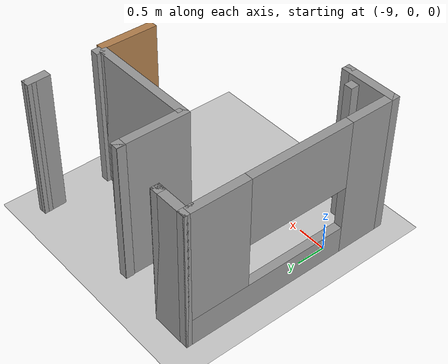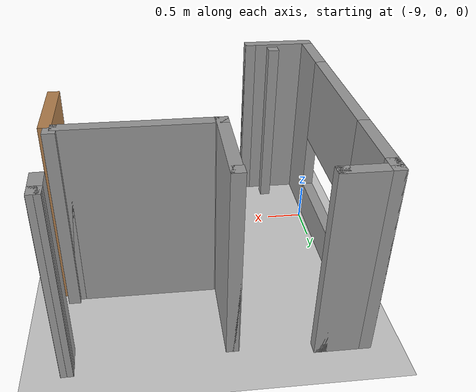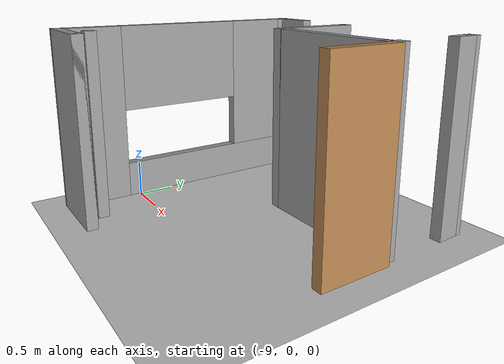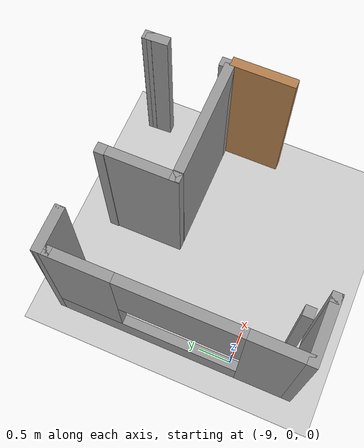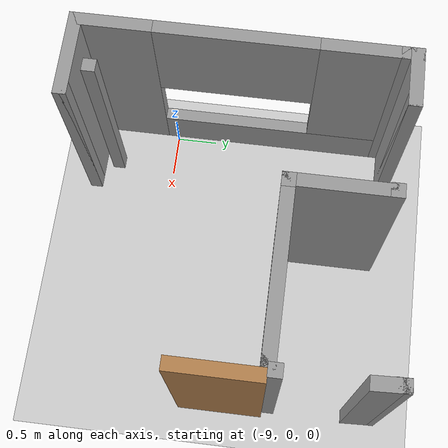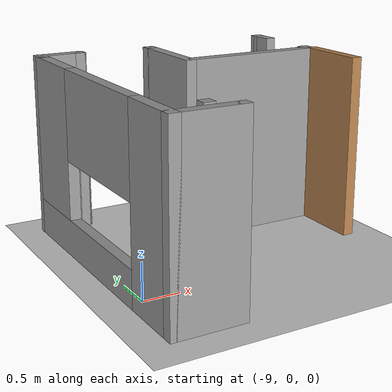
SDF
<sdf version="1.6">
 <world name="default">
  <model name="ground_plane">
   <static>1</static>
   <link name="link">
    <collision name="collision">
     <geometry><plane><normal>0 0 1</normal><size>100 100</size></plane></geometry>
     <surface><friction><ode><mu>100</mu><mu2>50</mu2></ode></friction></surface>
    </collision>
    <visual name="visual">
     <cast_shadows>0</cast_shadows>
     <geometry><plane><normal>0 0 1</normal><size>100 100</size></plane></geometry>
     <material>
      <script><uri>file://media/materials/scripts/gazebo.material</uri><name>Gazebo/Grey</name></script>
     </material>
    </visual>
   </link>
  </model>
  <model name="coloredwall">
   <pose>-5.54358 0.999428 0 0 -0 0</pose>
   <link name="Wall_2">
    <collision name="Wall_2_Collision">
     <geometry><box><size>1 0.15 2.5</size></box></geometry>
     <pose>0 0 1.25 0 -0 0</pose>
    </collision>
    <visual name="Wall_2_Visual">
     <pose>0 0 1.25 0 -0 0</pose>
     <geometry><box><size>1 0.15 2.5</size></box></geometry>
     <material>
      <script><uri>file://media/materials/scripts/gazebo.material</uri><name>Gazebo/Wood</name></script>
      <ambient>1 1 1 1</ambient>
     </material>
     <meta><layer>0</layer></meta>
    </visual>
    <pose>0 0 0 0 -0 1.5708</pose>
   </link>
   <static>1</static>
  </model>
  <model name="basicbuilding">
   <link name="Wall_25">
    <pose>-4.475 -1.87647 0 0 -0 0</pose>
    <visual name="Wall_25_Visual">
     <pose>0 0 1.25 0 -0 0</pose>
     <geometry><box><size>0.15 0.15 2.5</size></box></geometry>
     <material>
      <script><uri>file://media/materials/scripts/gazebo.material</uri><name>Gazebo/Grey</name></script>
      <ambient>1 1 1 1</ambient>
      <shader type="pixel"/>
      <diffuse>0.7 0.7 0.7 1</diffuse>
      <specular>0.01 0.01 0.01 1</specular>
      <emissive>0 0 0 1</emissive>
     </material>
     <meta><layer>0</layer></meta>
    </visual>
    <collision name="Wall_25_Collision">
     <pose>0 0 1.25 0 -0 0</pose>
     <geometry><box><size>0.15 0.15 2.5</size></box></geometry>
     <surface>
      <friction>
       <ode><mu>1</mu><mu2>1</mu2><fdir1>0 0 0</fdir1><slip1>0</slip1><slip2>0</slip2></ode>
       <torsional>
        <coefficient>1</coefficient>
        <patch_radius>0</patch_radius>
        <surface_radius>0</surface_radius>
        <use_patch_radius>1</use_patch_radius>
        <ode><slip>0</slip></ode>
       </torsional>
      </friction>
      <bounce><restitution_coefficient>0</restitution_coefficient><threshold>1e+06</threshold></bounce>
      <contact>
       <collide_without_contact>0</collide_without_contact>
       <collide_without_contact_bitmask>1</collide_without_contact_bitmask>
       <collide_bitmask>1</collide_bitmask>
       <ode>
        <soft_cfm>0</soft_cfm>
        <soft_erp>0.2</soft_erp>
        <kp>1e+13</kp>
        <kd>1</kd>
        <max_vel>0.01</max_vel>
        <min_depth>0</min_depth>
       </ode>
       <bullet>
        <split_impulse>1</split_impulse>
        <split_impulse_penetration_threshold>-0.01</split_impulse_penetration_threshold>
        <soft_cfm>0</soft_cfm>
        <soft_erp>0.2</soft_erp>
        <kp>1e+13</kp>
        <kd>1</kd>
       </bullet>
      </contact>
     </surface>
    </collision>
   </link>
   <link name="Wall_26">
    <pose>-4.9 -1.87647 0 0 -0 3.14159</pose>
    <visual name="Wall_26_Visual">
     <pose>0 0 1.25 0 -0 0</pose>
     <geometry><box><size>1 0.15 2.5</size></box></geometry>
     <material>
      <script><uri>file://media/materials/scripts/gazebo.material</uri><name>Gazebo/Grey</name></script>
      <ambient>1 1 1 1</ambient>
      <shader type="pixel"/>
      <diffuse>0.7 0.7 0.7 1</diffuse>
      <specular>0.01 0.01 0.01 1</specular>
      <emissive>0 0 0 1</emissive>
     </material>
     <meta><layer>0</layer></meta>
    </visual>
    <collision name="Wall_26_Collision">
     <pose>0 0 1.25 0 -0 0</pose>
     <geometry><box><size>1 0.15 2.5</size></box></geometry>
     <surface>
      <friction>
       <ode><mu>1</mu><mu2>1</mu2><fdir1>0 0 0</fdir1><slip1>0</slip1><slip2>0</slip2></ode>
       <torsional>
        <coefficient>1</coefficient>
        <patch_radius>0</patch_radius>
        <surface_radius>0</surface_radius>
        <use_patch_radius>1</use_patch_radius>
        <ode><slip>0</slip></ode>
       </torsional>
      </friction>
      <bounce><restitution_coefficient>0</restitution_coefficient><threshold>1e+06</threshold></bounce>
      <contact>
       <collide_without_contact>0</collide_without_contact>
       <collide_without_contact_bitmask>1</collide_without_contact_bitmask>
       <collide_bitmask>1</collide_bitmask>
       <ode>
        <soft_cfm>0</soft_cfm>
        <soft_erp>0.2</soft_erp>
        <kp>1e+13</kp>
        <kd>1</kd>
        <max_vel>0.01</max_vel>
        <min_depth>0</min_depth>
       </ode>
       <bullet>
        <split_impulse>1</split_impulse>
        <split_impulse_penetration_threshold>-0.01</split_impulse_penetration_threshold>
        <soft_cfm>0</soft_cfm>
        <soft_erp>0.2</soft_erp>
        <kp>1e+13</kp>
        <kd>1</kd>
       </bullet>
      </contact>
     </surface>
    </collision>
   </link>
   <link name="Wall_27">
    <pose>-5.325 -0.076469 0 0 -0 1.5708</pose>
    <visual name="Wall_27_Visual_0">
     <pose>-1.4175 0 1.25 0 -0 0</pose>
     <geometry><box><size>0.915 0.15 2.5</size></box></geometry>
     <material>
      <script><uri>file://media/materials/scripts/gazebo.material</uri><name>Gazebo/Grey</name></script>
      <ambient>1 1 1 1</ambient>
      <shader type="pixel"/>
      <diffuse>0.7 0.7 0.7 1</diffuse>
      <specular>0.01 0.01 0.01 1</specular>
      <emissive>0 0 0 1</emissive>
     </material>
     <meta><layer>0</layer></meta>
    </visual>
    <visual name="Wall_27_Visual_1">
     <pose>0.4575 0 0.25 0 -0 0</pose>
     <geometry><box><size>2.835 0.15 0.5</size></box></geometry>
     <material>
      <script><uri>file://media/materials/scripts/gazebo.material</uri><name>Gazebo/Grey</name></script>
      <ambient>1 1 1 1</ambient>
      <shader type="pixel"/>
      <diffuse>0.7 0.7 0.7 1</diffuse>
      <specular>0.01 0.01 0.01 1</specular>
      <emissive>0 0 0 1</emissive>
     </material>
     <meta><layer>0</layer></meta>
    </visual>
    <visual name="Wall_27_Visual_2">
     <pose>1.3675 0 1.5 0 -0 0</pose>
     <geometry><box><size>1.015 0.15 2</size></box></geometry>
     <material>
      <script><uri>file://media/materials/scripts/gazebo.material</uri><name>Gazebo/Grey</name></script>
      <ambient>1 1 1 1</ambient>
      <shader type="pixel"/>
      <diffuse>0.7 0.7 0.7 1</diffuse>
      <specular>0.01 0.01 0.01 1</specular>
      <emissive>0 0 0 1</emissive>
     </material>
     <meta><layer>0</layer></meta>
    </visual>
    <visual name="Wall_27_Visual_3">
     <pose>-0.05 0 1.9 0 -0 0</pose>
     <geometry><box><size>1.82 0.15 1.2</size></box></geometry>
     <material>
      <script><uri>file://media/materials/scripts/gazebo.material</uri><name>Gazebo/Grey</name></script>
      <ambient>1 1 1 1</ambient>
      <shader type="pixel"/>
      <diffuse>0.7 0.7 0.7 1</diffuse>
      <specular>0.01 0.01 0.01 1</specular>
      <emissive>0 0 0 1</emissive>
     </material>
     <meta><layer>0</layer></meta>
    </visual>
    <collision name="Wall_27_Collision_0">
     <pose>-1.4175 0 1.25 0 -0 0</pose>
     <geometry><box><size>0.915 0.15 2.5</size></box></geometry>
     <surface>
      <friction>
       <ode><mu>1</mu><mu2>1</mu2><fdir1>0 0 0</fdir1><slip1>0</slip1><slip2>0</slip2></ode>
       <torsional>
        <coefficient>1</coefficient>
        <patch_radius>0</patch_radius>
        <surface_radius>0</surface_radius>
        <use_patch_radius>1</use_patch_radius>
        <ode><slip>0</slip></ode>
       </torsional>
      </friction>
      <bounce><restitution_coefficient>0</restitution_coefficient><threshold>1e+06</threshold></bounce>
      <contact>
       <collide_without_contact>0</collide_without_contact>
       <collide_without_contact_bitmask>1</collide_without_contact_bitmask>
       <collide_bitmask>1</collide_bitmask>
       <ode>
        <soft_cfm>0</soft_cfm>
        <soft_erp>0.2</soft_erp>
        <kp>1e+13</kp>
        <kd>1</kd>
        <max_vel>0.01</max_vel>
        <min_depth>0</min_depth>
       </ode>
       <bullet>
        <split_impulse>1</split_impulse>
        <split_impulse_penetration_threshold>-0.01</split_impulse_penetration_threshold>
        <soft_cfm>0</soft_cfm>
        <soft_erp>0.2</soft_erp>
        <kp>1e+13</kp>
        <kd>1</kd>
       </bullet>
      </contact>
     </surface>
    </collision>
    <collision name="Wall_27_Collision_1">
     <pose>0.4575 0 0.25 0 -0 0</pose>
     <geometry><box><size>2.835 0.15 0.5</size></box></geometry>
     <surface>
      <friction>
       <ode><mu>1</mu><mu2>1</mu2><fdir1>0 0 0</fdir1><slip1>0</slip1><slip2>0</slip2></ode>
       <torsional>
        <coefficient>1</coefficient>
        <patch_radius>0</patch_radius>
        <surface_radius>0</surface_radius>
        <use_patch_radius>1</use_patch_radius>
        <ode><slip>0</slip></ode>
       </torsional>
      </friction>
      <bounce><restitution_coefficient>0</restitution_coefficient><threshold>1e+06</threshold></bounce>
      <contact>
       <collide_without_contact>0</collide_without_contact>
       <collide_without_contact_bitmask>1</collide_without_contact_bitmask>
       <collide_bitmask>1</collide_bitmask>
       <ode>
        <soft_cfm>0</soft_cfm>
        <soft_erp>0.2</soft_erp>
        <kp>1e+13</kp>
        <kd>1</kd>
        <max_vel>0.01</max_vel>
        <min_depth>0</min_depth>
       </ode>
       <bullet>
        <split_impulse>1</split_impulse>
        <split_impulse_penetration_threshold>-0.01</split_impulse_penetration_threshold>
        <soft_cfm>0</soft_cfm>
        <soft_erp>0.2</soft_erp>
        <kp>1e+13</kp>
        <kd>1</kd>
       </bullet>
      </contact>
     </surface>
    </collision>
    <collision name="Wall_27_Collision_2">
     <pose>1.3675 0 1.5 0 -0 0</pose>
     <geometry><box><size>1.015 0.15 2</size></box></geometry>
     <surface>
      <friction>
       <ode><mu>1</mu><mu2>1</mu2><fdir1>0 0 0</fdir1><slip1>0</slip1><slip2>0</slip2></ode>
       <torsional>
        <coefficient>1</coefficient>
        <patch_radius>0</patch_radius>
        <surface_radius>0</surface_radius>
        <use_patch_radius>1</use_patch_radius>
        <ode><slip>0</slip></ode>
       </torsional>
      </friction>
      <bounce><restitution_coefficient>0</restitution_coefficient><threshold>1e+06</threshold></bounce>
      <contact>
       <collide_without_contact>0</collide_without_contact>
       <collide_without_contact_bitmask>1</collide_without_contact_bitmask>
       <collide_bitmask>1</collide_bitmask>
       <ode>
        <soft_cfm>0</soft_cfm>
        <soft_erp>0.2</soft_erp>
        <kp>1e+13</kp>
        <kd>1</kd>
        <max_vel>0.01</max_vel>
        <min_depth>0</min_depth>
       </ode>
       <bullet>
        <split_impulse>1</split_impulse>
        <split_impulse_penetration_threshold>-0.01</split_impulse_penetration_threshold>
        <soft_cfm>0</soft_cfm>
        <soft_erp>0.2</soft_erp>
        <kp>1e+13</kp>
        <kd>1</kd>
       </bullet>
      </contact>
     </surface>
    </collision>
    <collision name="Wall_27_Collision_3">
     <pose>-0.05 0 1.9 0 -0 0</pose>
     <geometry><box><size>1.82 0.15 1.2</size></box></geometry>
     <surface>
      <friction>
       <ode><mu>1</mu><mu2>1</mu2><fdir1>0 0 0</fdir1><slip1>0</slip1><slip2>0</slip2></ode>
       <torsional>
        <coefficient>1</coefficient>
        <patch_radius>0</patch_radius>
        <surface_radius>0</surface_radius>
        <use_patch_radius>1</use_patch_radius>
        <ode><slip>0</slip></ode>
       </torsional>
      </friction>
      <bounce><restitution_coefficient>0</restitution_coefficient><threshold>1e+06</threshold></bounce>
      <contact>
       <collide_without_contact>0</collide_without_contact>
       <collide_without_contact_bitmask>1</collide_without_contact_bitmask>
       <collide_bitmask>1</collide_bitmask>
       <ode>
        <soft_cfm>0</soft_cfm>
        <soft_erp>0.2</soft_erp>
        <kp>1e+13</kp>
        <kd>1</kd>
        <max_vel>0.01</max_vel>
        <min_depth>0</min_depth>
       </ode>
       <bullet>
        <split_impulse>1</split_impulse>
        <split_impulse_penetration_threshold>-0.01</split_impulse_penetration_threshold>
        <soft_cfm>0</soft_cfm>
        <soft_erp>0.2</soft_erp>
        <kp>1e+13</kp>
        <kd>1</kd>
       </bullet>
      </contact>
     </surface>
    </collision>
   </link>
   <link name="Wall_28">
    <pose>-5.325 1.72353 0 0 -0 0</pose>
    <visual name="Wall_28_Visual">
     <pose>0 0 1.25 0 -0 0</pose>
     <geometry><box><size>0.15 0.15 2.5</size></box></geometry>
     <material>
      <script><uri>file://media/materials/scripts/gazebo.material</uri><name>Gazebo/Grey</name></script>
      <ambient>1 1 1 1</ambient>
      <shader type="pixel"/>
      <diffuse>0.7 0.7 0.7 1</diffuse>
      <specular>0.01 0.01 0.01 1</specular>
      <emissive>0 0 0 1</emissive>
     </material>
     <meta><layer>0</layer></meta>
    </visual>
    <collision name="Wall_28_Collision">
     <pose>0 0 1.25 0 -0 0</pose>
     <geometry><box><size>0.15 0.15 2.5</size></box></geometry>
     <surface>
      <friction>
       <ode><mu>1</mu><mu2>1</mu2><fdir1>0 0 0</fdir1><slip1>0</slip1><slip2>0</slip2></ode>
       <torsional>
        <coefficient>1</coefficient>
        <patch_radius>0</patch_radius>
        <surface_radius>0</surface_radius>
        <use_patch_radius>1</use_patch_radius>
        <ode><slip>0</slip></ode>
       </torsional>
      </friction>
      <bounce><restitution_coefficient>0</restitution_coefficient><threshold>1e+06</threshold></bounce>
      <contact>
       <collide_without_contact>0</collide_without_contact>
       <collide_without_contact_bitmask>1</collide_without_contact_bitmask>
       <collide_bitmask>1</collide_bitmask>
       <ode>
        <soft_cfm>0</soft_cfm>
        <soft_erp>0.2</soft_erp>
        <kp>1e+13</kp>
        <kd>1</kd>
        <max_vel>0.01</max_vel>
        <min_depth>0</min_depth>
       </ode>
       <bullet>
        <split_impulse>1</split_impulse>
        <split_impulse_penetration_threshold>-0.01</split_impulse_penetration_threshold>
        <soft_cfm>0</soft_cfm>
        <soft_erp>0.2</soft_erp>
        <kp>1e+13</kp>
        <kd>1</kd>
       </bullet>
      </contact>
     </surface>
    </collision>
   </link>
   <link name="Wall_29">
    <pose>-5.325 1.77353 0 0 -0 1.5708</pose>
    <visual name="Wall_29_Visual">
     <pose>0 0 1.25 0 -0 0</pose>
     <geometry><box><size>0.25 0.15 2.5</size></box></geometry>
     <material>
      <script><uri>file://media/materials/scripts/gazebo.material</uri><name>Gazebo/Grey</name></script>
      <ambient>1 1 1 1</ambient>
      <shader type="pixel"/>
      <diffuse>0.7 0.7 0.7 1</diffuse>
      <specular>0.01 0.01 0.01 1</specular>
      <emissive>0 0 0 1</emissive>
     </material>
     <meta><layer>0</layer></meta>
    </visual>
    <collision name="Wall_29_Collision">
     <pose>0 0 1.25 0 -0 0</pose>
     <geometry><box><size>0.25 0.15 2.5</size></box></geometry>
     <surface>
      <friction>
       <ode><mu>1</mu><mu2>1</mu2><fdir1>0 0 0</fdir1><slip1>0</slip1><slip2>0</slip2></ode>
       <torsional>
        <coefficient>1</coefficient>
        <patch_radius>0</patch_radius>
        <surface_radius>0</surface_radius>
        <use_patch_radius>1</use_patch_radius>
        <ode><slip>0</slip></ode>
       </torsional>
      </friction>
      <bounce><restitution_coefficient>0</restitution_coefficient><threshold>1e+06</threshold></bounce>
      <contact>
       <collide_without_contact>0</collide_without_contact>
       <collide_without_contact_bitmask>1</collide_without_contact_bitmask>
       <collide_bitmask>1</collide_bitmask>
       <ode>
        <soft_cfm>0</soft_cfm>
        <soft_erp>0.2</soft_erp>
        <kp>1e+13</kp>
        <kd>1</kd>
        <max_vel>0.01</max_vel>
        <min_depth>0</min_depth>
       </ode>
       <bullet>
        <split_impulse>1</split_impulse>
        <split_impulse_penetration_threshold>-0.01</split_impulse_penetration_threshold>
        <soft_cfm>0</soft_cfm>
        <soft_erp>0.2</soft_erp>
        <kp>1e+13</kp>
        <kd>1</kd>
       </bullet>
      </contact>
     </surface>
    </collision>
   </link>
   <link name="Wall_30">
    <pose>-5.05 1.82353 0 0 -0 0</pose>
    <visual name="Wall_30_Visual">
     <pose>0 0 1.25 0 -0 0</pose>
     <geometry><box><size>0.7 0.15 2.5</size></box></geometry>
     <material>
      <script><uri>file://media/materials/scripts/gazebo.material</uri><name>Gazebo/Grey</name></script>
      <ambient>1 1 1 1</ambient>
      <shader type="pixel"/>
      <diffuse>0.7 0.7 0.7 1</diffuse>
      <specular>0.01 0.01 0.01 1</specular>
      <emissive>0 0 0 1</emissive>
     </material>
     <meta><layer>0</layer></meta>
    </visual>
    <collision name="Wall_30_Collision">
     <pose>0 0 1.25 0 -0 0</pose>
     <geometry><box><size>0.7 0.15 2.5</size></box></geometry>
     <surface>
      <friction>
       <ode><mu>1</mu><mu2>1</mu2><fdir1>0 0 0</fdir1><slip1>0</slip1><slip2>0</slip2></ode>
       <torsional>
        <coefficient>1</coefficient>
        <patch_radius>0</patch_radius>
        <surface_radius>0</surface_radius>
        <use_patch_radius>1</use_patch_radius>
        <ode><slip>0</slip></ode>
       </torsional>
      </friction>
      <bounce><restitution_coefficient>0</restitution_coefficient><threshold>1e+06</threshold></bounce>
      <contact>
       <collide_without_contact>0</collide_without_contact>
       <collide_without_contact_bitmask>1</collide_without_contact_bitmask>
       <collide_bitmask>1</collide_bitmask>
       <ode>
        <soft_cfm>0</soft_cfm>
        <soft_erp>0.2</soft_erp>
        <kp>1e+13</kp>
        <kd>1</kd>
        <max_vel>0.01</max_vel>
        <min_depth>0</min_depth>
       </ode>
       <bullet>
        <split_impulse>1</split_impulse>
        <split_impulse_penetration_threshold>-0.01</split_impulse_penetration_threshold>
        <soft_cfm>0</soft_cfm>
        <soft_erp>0.2</soft_erp>
        <kp>1e+13</kp>
        <kd>1</kd>
       </bullet>
      </contact>
     </surface>
    </collision>
   </link>
   <link name="Wall_31">
    <pose>-4.775 1.82353 0 0 -0 0</pose>
    <visual name="Wall_31_Visual">
     <pose>0 0 1.25 0 -0 0</pose>
     <geometry><box><size>0.15 0.15 2.5</size></box></geometry>
     <material>
      <script><uri>file://media/materials/scripts/gazebo.material</uri><name>Gazebo/Grey</name></script>
      <ambient>1 1 1 1</ambient>
      <shader type="pixel"/>
      <diffuse>0.7 0.7 0.7 1</diffuse>
      <specular>0.01 0.01 0.01 1</specular>
      <emissive>0 0 0 1</emissive>
     </material>
     <meta><layer>0</layer></meta>
    </visual>
    <collision name="Wall_31_Collision">
     <pose>0 0 1.25 0 -0 0</pose>
     <geometry><box><size>0.15 0.15 2.5</size></box></geometry>
     <surface>
      <friction>
       <ode><mu>1</mu><mu2>1</mu2><fdir1>0 0 0</fdir1><slip1>0</slip1><slip2>0</slip2></ode>
       <torsional>
        <coefficient>1</coefficient>
        <patch_radius>0</patch_radius>
        <surface_radius>0</surface_radius>
        <use_patch_radius>1</use_patch_radius>
        <ode><slip>0</slip></ode>
       </torsional>
      </friction>
      <bounce><restitution_coefficient>0</restitution_coefficient><threshold>1e+06</threshold></bounce>
      <contact>
       <collide_without_contact>0</collide_without_contact>
       <collide_without_contact_bitmask>1</collide_without_contact_bitmask>
       <collide_bitmask>1</collide_bitmask>
       <ode>
        <soft_cfm>0</soft_cfm>
        <soft_erp>0.2</soft_erp>
        <kp>1e+13</kp>
        <kd>1</kd>
        <max_vel>0.01</max_vel>
        <min_depth>0</min_depth>
       </ode>
       <bullet>
        <split_impulse>1</split_impulse>
        <split_impulse_penetration_threshold>-0.01</split_impulse_penetration_threshold>
        <soft_cfm>0</soft_cfm>
        <soft_erp>0.2</soft_erp>
        <kp>1e+13</kp>
        <kd>1</kd>
       </bullet>
      </contact>
     </surface>
    </collision>
   </link>
   <link name="Wall_33">
    <pose>-3.74 1.70353 0 0 -0 0</pose>
    <visual name="Wall_33_Visual">
     <pose>0 0 1.25 0 -0 0</pose>
     <geometry><box><size>0.16 0.15 2.5</size></box></geometry>
     <material>
      <script><uri>file://media/materials/scripts/gazebo.material</uri><name>Gazebo/Grey</name></script>
      <ambient>1 1 1 1</ambient>
      <shader type="pixel"/>
      <diffuse>0.7 0.7 0.7 1</diffuse>
      <specular>0.01 0.01 0.01 1</specular>
      <emissive>0 0 0 1</emissive>
     </material>
     <meta><layer>0</layer></meta>
    </visual>
    <collision name="Wall_33_Collision">
     <pose>0 0 1.25 0 -0 0</pose>
     <geometry><box><size>0.16 0.15 2.5</size></box></geometry>
     <surface>
      <friction>
       <ode><mu>1</mu><mu2>1</mu2><fdir1>0 0 0</fdir1><slip1>0</slip1><slip2>0</slip2></ode>
       <torsional>
        <coefficient>1</coefficient>
        <patch_radius>0</patch_radius>
        <surface_radius>0</surface_radius>
        <use_patch_radius>1</use_patch_radius>
        <ode><slip>0</slip></ode>
       </torsional>
      </friction>
      <bounce><restitution_coefficient>0</restitution_coefficient><threshold>1e+06</threshold></bounce>
      <contact>
       <collide_without_contact>0</collide_without_contact>
       <collide_without_contact_bitmask>1</collide_without_contact_bitmask>
       <collide_bitmask>1</collide_bitmask>
       <ode>
        <soft_cfm>0</soft_cfm>
        <soft_erp>0.2</soft_erp>
        <kp>1e+13</kp>
        <kd>1</kd>
        <max_vel>0.01</max_vel>
        <min_depth>0</min_depth>
       </ode>
       <bullet>
        <split_impulse>1</split_impulse>
        <split_impulse_penetration_threshold>-0.01</split_impulse_penetration_threshold>
        <soft_cfm>0</soft_cfm>
        <soft_erp>0.2</soft_erp>
        <kp>1e+13</kp>
        <kd>1</kd>
       </bullet>
      </contact>
     </surface>
    </collision>
   </link>
   <link name="Wall_34">
    <pose>-3.735 1.15353 0 0 0 -1.5708</pose>
    <visual name="Wall_34_Visual">
     <pose>0 0 1.25 0 -0 0</pose>
     <geometry><box><size>1.25 0.15 2.5</size></box></geometry>
     <material>
      <script><uri>file://media/materials/scripts/gazebo.material</uri><name>Gazebo/Grey</name></script>
      <ambient>1 1 1 1</ambient>
      <shader type="pixel"/>
      <diffuse>0.7 0.7 0.7 1</diffuse>
      <specular>0.01 0.01 0.01 1</specular>
      <emissive>0 0 0 1</emissive>
     </material>
     <meta><layer>0</layer></meta>
    </visual>
    <collision name="Wall_34_Collision">
     <pose>0 0 1.25 0 -0 0</pose>
     <geometry><box><size>1.25 0.15 2.5</size></box></geometry>
     <surface>
      <friction>
       <ode><mu>1</mu><mu2>1</mu2><fdir1>0 0 0</fdir1><slip1>0</slip1><slip2>0</slip2></ode>
       <torsional>
        <coefficient>1</coefficient>
        <patch_radius>0</patch_radius>
        <surface_radius>0</surface_radius>
        <use_patch_radius>1</use_patch_radius>
        <ode><slip>0</slip></ode>
       </torsional>
      </friction>
      <bounce><restitution_coefficient>0</restitution_coefficient><threshold>1e+06</threshold></bounce>
      <contact>
       <collide_without_contact>0</collide_without_contact>
       <collide_without_contact_bitmask>1</collide_without_contact_bitmask>
       <collide_bitmask>1</collide_bitmask>
       <ode>
        <soft_cfm>0</soft_cfm>
        <soft_erp>0.2</soft_erp>
        <kp>1e+13</kp>
        <kd>1</kd>
        <max_vel>0.01</max_vel>
        <min_depth>0</min_depth>
       </ode>
       <bullet>
        <split_impulse>1</split_impulse>
        <split_impulse_penetration_threshold>-0.01</split_impulse_penetration_threshold>
        <soft_cfm>0</soft_cfm>
        <soft_erp>0.2</soft_erp>
        <kp>1e+13</kp>
        <kd>1</kd>
       </bullet>
      </contact>
     </surface>
    </collision>
   </link>
   <link name="Wall_35">
    <pose>-3.73 0.603531 0 0 -0 0</pose>
    <visual name="Wall_35_Visual">
     <pose>0 0 1.25 0 -0 0</pose>
     <geometry><box><size>0.16 0.15 2.5</size></box></geometry>
     <material>
      <script><uri>file://media/materials/scripts/gazebo.material</uri><name>Gazebo/Grey</name></script>
      <ambient>1 1 1 1</ambient>
      <shader type="pixel"/>
      <diffuse>0.7 0.7 0.7 1</diffuse>
      <specular>0.01 0.01 0.01 1</specular>
      <emissive>0 0 0 1</emissive>
     </material>
     <meta><layer>0</layer></meta>
    </visual>
    <collision name="Wall_35_Collision">
     <pose>0 0 1.25 0 -0 0</pose>
     <geometry><box><size>0.16 0.15 2.5</size></box></geometry>
     <surface>
      <friction>
       <ode><mu>1</mu><mu2>1</mu2><fdir1>0 0 0</fdir1><slip1>0</slip1><slip2>0</slip2></ode>
       <torsional>
        <coefficient>1</coefficient>
        <patch_radius>0</patch_radius>
        <surface_radius>0</surface_radius>
        <use_patch_radius>1</use_patch_radius>
        <ode><slip>0</slip></ode>
       </torsional>
      </friction>
      <bounce><restitution_coefficient>0</restitution_coefficient><threshold>1e+06</threshold></bounce>
      <contact>
       <collide_without_contact>0</collide_without_contact>
       <collide_without_contact_bitmask>1</collide_without_contact_bitmask>
       <collide_bitmask>1</collide_bitmask>
       <ode>
        <soft_cfm>0</soft_cfm>
        <soft_erp>0.2</soft_erp>
        <kp>1e+13</kp>
        <kd>1</kd>
        <max_vel>0.01</max_vel>
        <min_depth>0</min_depth>
       </ode>
       <bullet>
        <split_impulse>1</split_impulse>
        <split_impulse_penetration_threshold>-0.01</split_impulse_penetration_threshold>
        <soft_cfm>0</soft_cfm>
        <soft_erp>0.2</soft_erp>
        <kp>1e+13</kp>
        <kd>1</kd>
       </bullet>
      </contact>
     </surface>
    </collision>
   </link>
   <link name="Wall_36">
    <pose>-2.8 0.603531 0 0 -0 0</pose>
    <visual name="Wall_36_Visual">
     <pose>0 0 1.25 0 -0 0</pose>
     <geometry><box><size>2 0.15 2.5</size></box></geometry>
     <material>
      <script><uri>file://media/materials/scripts/gazebo.material</uri><name>Gazebo/Grey</name></script>
      <ambient>1 1 1 1</ambient>
      <shader type="pixel"/>
      <diffuse>0.7 0.7 0.7 1</diffuse>
      <specular>0.01 0.01 0.01 1</specular>
      <emissive>0 0 0 1</emissive>
     </material>
     <meta><layer>0</layer></meta>
    </visual>
    <collision name="Wall_36_Collision">
     <pose>0 0 1.25 0 -0 0</pose>
     <geometry><box><size>2 0.15 2.5</size></box></geometry>
     <surface>
      <friction>
       <ode><mu>1</mu><mu2>1</mu2><fdir1>0 0 0</fdir1><slip1>0</slip1><slip2>0</slip2></ode>
       <torsional>
        <coefficient>1</coefficient>
        <patch_radius>0</patch_radius>
        <surface_radius>0</surface_radius>
        <use_patch_radius>1</use_patch_radius>
        <ode><slip>0</slip></ode>
       </torsional>
      </friction>
      <bounce><restitution_coefficient>0</restitution_coefficient><threshold>1e+06</threshold></bounce>
      <contact>
       <collide_without_contact>0</collide_without_contact>
       <collide_without_contact_bitmask>1</collide_without_contact_bitmask>
       <collide_bitmask>1</collide_bitmask>
       <ode>
        <soft_cfm>0</soft_cfm>
        <soft_erp>0.2</soft_erp>
        <kp>1e+13</kp>
        <kd>1</kd>
        <max_vel>0.01</max_vel>
        <min_depth>0</min_depth>
       </ode>
       <bullet>
        <split_impulse>1</split_impulse>
        <split_impulse_penetration_threshold>-0.01</split_impulse_penetration_threshold>
        <soft_cfm>0</soft_cfm>
        <soft_erp>0.2</soft_erp>
        <kp>1e+13</kp>
        <kd>1</kd>
       </bullet>
      </contact>
     </surface>
    </collision>
   </link>
   <link name="Wall_37">
    <pose>-1.875 0.603531 0 0 -0 0</pose>
    <visual name="Wall_37_Visual">
     <pose>0 0 1.25 0 -0 0</pose>
     <geometry><box><size>0.15 0.15 2.5</size></box></geometry>
     <material>
      <script><uri>file://media/materials/scripts/gazebo.material</uri><name>Gazebo/Grey</name></script>
      <ambient>1 1 1 1</ambient>
      <shader type="pixel"/>
      <diffuse>0.7 0.7 0.7 1</diffuse>
      <specular>0.01 0.01 0.01 1</specular>
      <emissive>0 0 0 1</emissive>
     </material>
     <meta><layer>0</layer></meta>
    </visual>
    <collision name="Wall_37_Collision">
     <pose>0 0 1.25 0 -0 0</pose>
     <geometry><box><size>0.15 0.15 2.5</size></box></geometry>
     <surface>
      <friction>
       <ode><mu>1</mu><mu2>1</mu2><fdir1>0 0 0</fdir1><slip1>0</slip1><slip2>0</slip2></ode>
       <torsional>
        <coefficient>1</coefficient>
        <patch_radius>0</patch_radius>
        <surface_radius>0</surface_radius>
        <use_patch_radius>1</use_patch_radius>
        <ode><slip>0</slip></ode>
       </torsional>
      </friction>
      <bounce><restitution_coefficient>0</restitution_coefficient><threshold>1e+06</threshold></bounce>
      <contact>
       <collide_without_contact>0</collide_without_contact>
       <collide_without_contact_bitmask>1</collide_without_contact_bitmask>
       <collide_bitmask>1</collide_bitmask>
       <ode>
        <soft_cfm>0</soft_cfm>
        <soft_erp>0.2</soft_erp>
        <kp>1e+13</kp>
        <kd>1</kd>
        <max_vel>0.01</max_vel>
        <min_depth>0</min_depth>
       </ode>
       <bullet>
        <split_impulse>1</split_impulse>
        <split_impulse_penetration_threshold>-0.01</split_impulse_penetration_threshold>
        <soft_cfm>0</soft_cfm>
        <soft_erp>0.2</soft_erp>
        <kp>1e+13</kp>
        <kd>1</kd>
       </bullet>
      </contact>
     </surface>
    </collision>
   </link>
   <link name="Wall_38">
    <pose>-1.875 0.603531 0 0 -0 0</pose>
    <visual name="Wall_38_Visual">
     <pose>0 0 1.25 0 -0 0</pose>
     <geometry><box><size>0.15 0.15 2.5</size></box></geometry>
     <material>
      <script><uri>file://media/materials/scripts/gazebo.material</uri><name>Gazebo/Grey</name></script>
      <ambient>1 1 1 1</ambient>
      <shader type="pixel"/>
      <diffuse>0.7 0.7 0.7 1</diffuse>
      <specular>0.01 0.01 0.01 1</specular>
      <emissive>0 0 0 1</emissive>
     </material>
     <meta><layer>0</layer></meta>
    </visual>
    <collision name="Wall_38_Collision">
     <pose>0 0 1.25 0 -0 0</pose>
     <geometry><box><size>0.15 0.15 2.5</size></box></geometry>
     <surface>
      <friction>
       <ode><mu>1</mu><mu2>1</mu2><fdir1>0 0 0</fdir1><slip1>0</slip1><slip2>0</slip2></ode>
       <torsional>
        <coefficient>1</coefficient>
        <patch_radius>0</patch_radius>
        <surface_radius>0</surface_radius>
        <use_patch_radius>1</use_patch_radius>
        <ode><slip>0</slip></ode>
       </torsional>
      </friction>
      <bounce><restitution_coefficient>0</restitution_coefficient><threshold>1e+06</threshold></bounce>
      <contact>
       <collide_without_contact>0</collide_without_contact>
       <collide_without_contact_bitmask>1</collide_without_contact_bitmask>
       <collide_bitmask>1</collide_bitmask>
       <ode>
        <soft_cfm>0</soft_cfm>
        <soft_erp>0.2</soft_erp>
        <kp>1e+13</kp>
        <kd>1</kd>
        <max_vel>0.01</max_vel>
        <min_depth>0</min_depth>
       </ode>
       <bullet>
        <split_impulse>1</split_impulse>
        <split_impulse_penetration_threshold>-0.01</split_impulse_penetration_threshold>
        <soft_cfm>0</soft_cfm>
        <soft_erp>0.2</soft_erp>
        <kp>1e+13</kp>
        <kd>1</kd>
       </bullet>
      </contact>
     </surface>
    </collision>
   </link>
   <link name="Wall_45">
    <pose>-1.805 1.87353 0 0 -0 0</pose>
    <visual name="Wall_45_Visual">
     <pose>0 0 1.25 0 -0 0</pose>
     <geometry><box><size>0.15 0.15 2.5</size></box></geometry>
     <material>
      <script><uri>file://media/materials/scripts/gazebo.material</uri><name>Gazebo/Grey</name></script>
      <ambient>1 1 1 1</ambient>
      <shader type="pixel"/>
      <diffuse>0.7 0.7 0.7 1</diffuse>
      <specular>0.01 0.01 0.01 1</specular>
      <emissive>0 0 0 1</emissive>
     </material>
     <meta><layer>0</layer></meta>
    </visual>
    <collision name="Wall_45_Collision">
     <pose>0 0 1.25 0 -0 0</pose>
     <geometry><box><size>0.15 0.15 2.5</size></box></geometry>
     <surface>
      <friction>
       <ode><mu>1</mu><mu2>1</mu2><fdir1>0 0 0</fdir1><slip1>0</slip1><slip2>0</slip2></ode>
       <torsional>
        <coefficient>1</coefficient>
        <patch_radius>0</patch_radius>
        <surface_radius>0</surface_radius>
        <use_patch_radius>1</use_patch_radius>
        <ode><slip>0</slip></ode>
       </torsional>
      </friction>
      <bounce><restitution_coefficient>0</restitution_coefficient><threshold>1e+06</threshold></bounce>
      <contact>
       <collide_without_contact>0</collide_without_contact>
       <collide_without_contact_bitmask>1</collide_without_contact_bitmask>
       <collide_bitmask>1</collide_bitmask>
       <ode>
        <soft_cfm>0</soft_cfm>
        <soft_erp>0.2</soft_erp>
        <kp>1e+13</kp>
        <kd>1</kd>
        <max_vel>0.01</max_vel>
        <min_depth>0</min_depth>
       </ode>
       <bullet>
        <split_impulse>1</split_impulse>
        <split_impulse_penetration_threshold>-0.01</split_impulse_penetration_threshold>
        <soft_cfm>0</soft_cfm>
        <soft_erp>0.2</soft_erp>
        <kp>1e+13</kp>
        <kd>1</kd>
       </bullet>
      </contact>
     </surface>
    </collision>
   </link>
   <link name="Wall_48">
    <pose>-1.8 1.74853 0 0 -0 1.61078</pose>
    <visual name="Wall_48_Visual">
     <pose>0 0 1.25 0 -0 0</pose>
     <geometry><box><size>0.4002 0.15 2.5</size></box></geometry>
     <material>
      <script><uri>file://media/materials/scripts/gazebo.material</uri><name>Gazebo/Grey</name></script>
      <ambient>1 1 1 1</ambient>
      <shader type="pixel"/>
      <diffuse>0.7 0.7 0.7 1</diffuse>
      <specular>0.01 0.01 0.01 1</specular>
      <emissive>0 0 0 1</emissive>
     </material>
     <meta><layer>0</layer></meta>
    </visual>
    <collision name="Wall_48_Collision">
     <pose>0 0 1.25 0 -0 0</pose>
     <geometry><box><size>0.4002 0.15 2.5</size></box></geometry>
     <surface>
      <friction>
       <ode><mu>1</mu><mu2>1</mu2><fdir1>0 0 0</fdir1><slip1>0</slip1><slip2>0</slip2></ode>
       <torsional>
        <coefficient>1</coefficient>
        <patch_radius>0</patch_radius>
        <surface_radius>0</surface_radius>
        <use_patch_radius>1</use_patch_radius>
        <ode><slip>0</slip></ode>
       </torsional>
      </friction>
      <bounce><restitution_coefficient>0</restitution_coefficient><threshold>1e+06</threshold></bounce>
      <contact>
       <collide_without_contact>0</collide_without_contact>
       <collide_without_contact_bitmask>1</collide_without_contact_bitmask>
       <collide_bitmask>1</collide_bitmask>
       <ode>
        <soft_cfm>0</soft_cfm>
        <soft_erp>0.2</soft_erp>
        <kp>1e+13</kp>
        <kd>1</kd>
        <max_vel>0.01</max_vel>
        <min_depth>0</min_depth>
       </ode>
       <bullet>
        <split_impulse>1</split_impulse>
        <split_impulse_penetration_threshold>-0.01</split_impulse_penetration_threshold>
        <soft_cfm>0</soft_cfm>
        <soft_erp>0.2</soft_erp>
        <kp>1e+13</kp>
        <kd>1</kd>
       </bullet>
      </contact>
     </surface>
    </collision>
   </link>
   <link name="Wall_50">
    <pose>-1.805 0.673531 0 0 -0 0</pose>
    <visual name="Wall_50_Visual">
     <pose>0 0 1.25 0 -0 0</pose>
     <geometry><box><size>0.15 0.15 2.5</size></box></geometry>
     <material>
      <script><uri>file://media/materials/scripts/gazebo.material</uri><name>Gazebo/Grey</name></script>
      <ambient>1 1 1 1</ambient>
      <shader type="pixel"/>
      <diffuse>0.7 0.7 0.7 1</diffuse>
      <specular>0.01 0.01 0.01 1</specular>
      <emissive>0 0 0 1</emissive>
     </material>
     <meta><layer>0</layer></meta>
    </visual>
    <collision name="Wall_50_Collision">
     <pose>0 0 1.25 0 -0 0</pose>
     <geometry><box><size>0.15 0.15 2.5</size></box></geometry>
     <surface>
      <friction>
       <ode><mu>1</mu><mu2>1</mu2><fdir1>0 0 0</fdir1><slip1>0</slip1><slip2>0</slip2></ode>
       <torsional>
        <coefficient>1</coefficient>
        <patch_radius>0</patch_radius>
        <surface_radius>0</surface_radius>
        <use_patch_radius>1</use_patch_radius>
        <ode><slip>0</slip></ode>
       </torsional>
      </friction>
      <bounce><restitution_coefficient>0</restitution_coefficient><threshold>1e+06</threshold></bounce>
      <contact>
       <collide_without_contact>0</collide_without_contact>
       <collide_without_contact_bitmask>1</collide_without_contact_bitmask>
       <collide_bitmask>1</collide_bitmask>
       <ode>
        <soft_cfm>0</soft_cfm>
        <soft_erp>0.2</soft_erp>
        <kp>1e+13</kp>
        <kd>1</kd>
        <max_vel>0.01</max_vel>
        <min_depth>0</min_depth>
       </ode>
       <bullet>
        <split_impulse>1</split_impulse>
        <split_impulse_penetration_threshold>-0.01</split_impulse_penetration_threshold>
        <soft_cfm>0</soft_cfm>
        <soft_erp>0.2</soft_erp>
        <kp>1e+13</kp>
        <kd>1</kd>
       </bullet>
      </contact>
     </surface>
    </collision>
   </link>
   <link name="Wall_8">
    <pose>-4.775 -1.62647 0 0 -0 0</pose>
    <visual name="Wall_8_Visual">
     <pose>0 0 1.25 0 -0 0</pose>
     <geometry><box><size>0.15 0.15 2.5</size></box></geometry>
     <material>
      <script><uri>file://media/materials/scripts/gazebo.material</uri><name>Gazebo/Grey</name></script>
      <ambient>1 1 1 1</ambient>
      <shader type="pixel"/>
      <diffuse>0.7 0.7 0.7 1</diffuse>
      <specular>0.01 0.01 0.01 1</specular>
      <emissive>0 0 0 1</emissive>
     </material>
     <meta><layer>0</layer></meta>
    </visual>
    <collision name="Wall_8_Collision">
     <pose>0 0 1.25 0 -0 0</pose>
     <geometry><box><size>0.15 0.15 2.5</size></box></geometry>
     <surface>
      <friction>
       <ode><mu>1</mu><mu2>1</mu2><fdir1>0 0 0</fdir1><slip1>0</slip1><slip2>0</slip2></ode>
       <torsional>
        <coefficient>1</coefficient>
        <patch_radius>0</patch_radius>
        <surface_radius>0</surface_radius>
        <use_patch_radius>1</use_patch_radius>
        <ode><slip>0</slip></ode>
       </torsional>
      </friction>
      <bounce><restitution_coefficient>0</restitution_coefficient><threshold>1e+06</threshold></bounce>
      <contact>
       <collide_without_contact>0</collide_without_contact>
       <collide_without_contact_bitmask>1</collide_without_contact_bitmask>
       <collide_bitmask>1</collide_bitmask>
       <ode>
        <soft_cfm>0</soft_cfm>
        <soft_erp>0.2</soft_erp>
        <kp>1e+13</kp>
        <kd>1</kd>
        <max_vel>0.01</max_vel>
        <min_depth>0</min_depth>
       </ode>
       <bullet>
        <split_impulse>1</split_impulse>
        <split_impulse_penetration_threshold>-0.01</split_impulse_penetration_threshold>
        <soft_cfm>0</soft_cfm>
        <soft_erp>0.2</soft_erp>
        <kp>1e+13</kp>
        <kd>1</kd>
       </bullet>
      </contact>
     </surface>
    </collision>
   </link>
   <static>1</static>
   <pose>-3.79806 0.89575 0 0 -0 0</pose>
  </model>
 </world>
</sdf>
